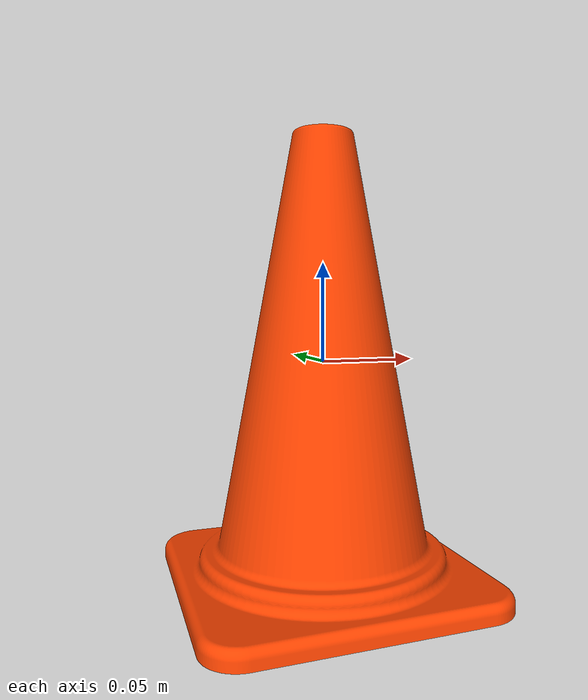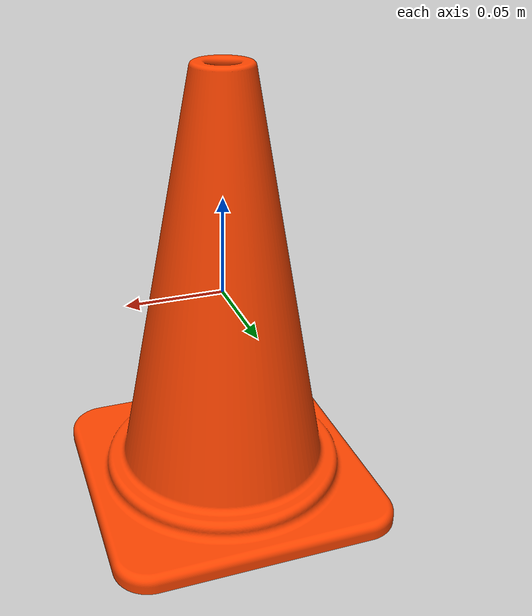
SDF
<?xml version="1.0"?>
<sdf version="1.4">
  <model name="Cone">
    <link name="link">
    	<inertial>
        <mass>4.0</mass>
      </inertial>
      <collision name="collision">
        <geometry>
          <mesh>
            <scale>0.00375 0.00375 0.0046</scale>
            <uri>model://meshes/cone.stl</uri>
          </mesh>
        </geometry>
      </collision>
      <visual name="visual">
      	<material>
          <ambient>1 0.27 0 1</ambient>
          <diffuse>1 0.27 0 1</diffuse>
        </material>
        <geometry>
          <mesh>
            <scale>0.00375 0.00375 0.0046</scale>
            <uri>model://meshes/cone.stl</uri>
          </mesh>
        </geometry>
      </visual>
    </link>
  </model>
</sdf>
